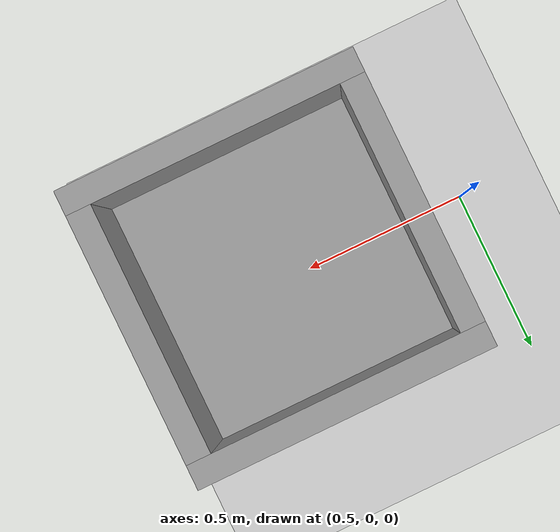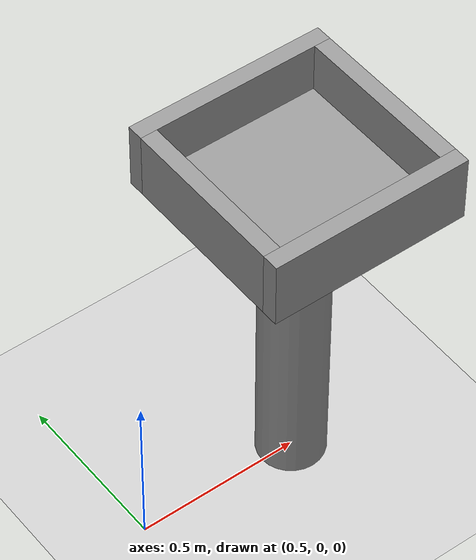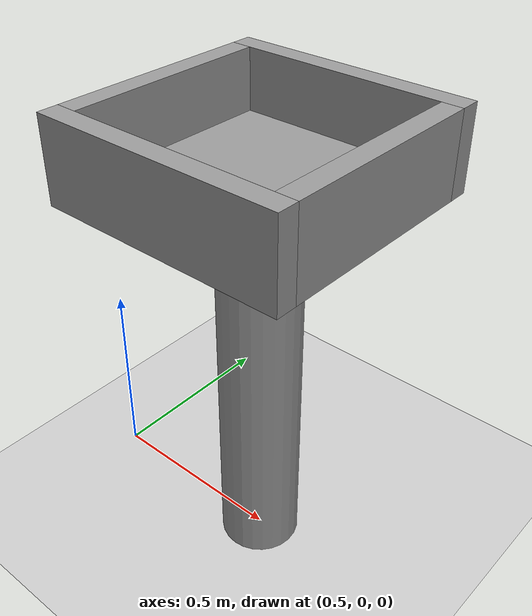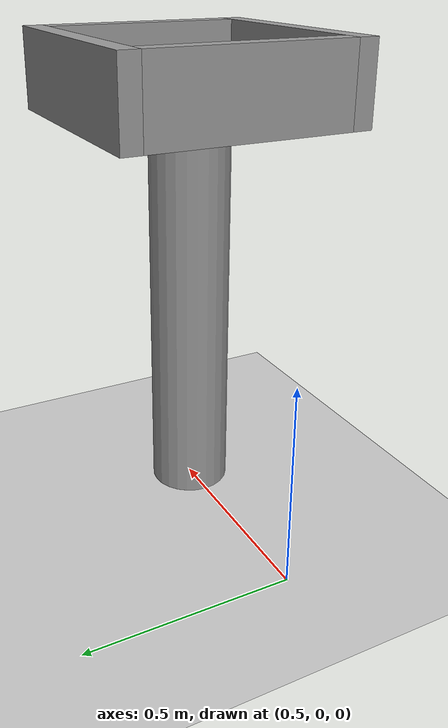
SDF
<sdf version="1.4">
 <world name="qual_task_2">
  <physics type="ode">
   <gravity>0 0 -9.81</gravity>
   <ode>
    <solver>
     <use_dynamic_moi_rescaling>true</use_dynamic_moi_rescaling>
     <type>quick</type>
     <iters>50</iters>
     <sor>1.4</sor>
    </solver>
    <constraints>
     <cfm>0.0</cfm>
     <erp>0.2</erp>
     <contact_max_correcting_vel>100.0</contact_max_correcting_vel>
     <contact_surface_layer>0.0</contact_surface_layer>
    </constraints>
   </ode>
   <real_time_update_rate>1000</real_time_update_rate>
   <max_step_size>0.001</max_step_size>
  </physics>
  <scene><ambient>0.3 0.3 0.3 1.0</ambient></scene>
  <light type="directional" name="sun">
   <pose>0 0 100 0 0 0</pose>
   <diffuse>0.9 0.9 0.9 1</diffuse>
   <specular>0.1 0.1 0.1 1</specular>
   <attenuation>
    <range>1000</range>
    <constant>0.9</constant>
    <linear>0.01</linear>
    <quadratic>0.001</quadratic>
   </attenuation>
   <direction>-0.2 0.0 -1.0</direction>
  </light>
  <light type="point" name="light_bulb">
   <cast_shadows>false</cast_shadows>
   <pose>-3 0 4 0 0 0</pose>
   <diffuse>0.5 0.5 0.5 1</diffuse>
   <specular>0.0 0.0 0.0 1</specular>
   <attenuation>
    <range>80</range>
    <constant>0.9</constant>
    <linear>0.01</linear>
    <quadratic>0.001</quadratic>
   </attenuation>
  </light>
  <include><uri>model://ground_plane</uri></include>
  <model name="bin">
   <static>true</static>
   <pose>1.0 0.0 1.00 0 0 0</pose>
   <link name="link">
    <collision name="pedistal_collision">
     <pose>0 0 -0.5 0 0 0</pose>
     <geometry><cylinder><radius>0.1</radius><length>1.0</length></cylinder></geometry>
    </collision>
    <visual name="pedistal_visual">
     <pose>0 0 -0.5 0 0 0</pose>
     <geometry><cylinder><radius>0.1</radius><length>1.0</length></cylinder></geometry>
     <material>
      <script><uri>file://media/materials/scripts/gazebo.material</uri><name>Gazebo/Grey</name></script>
     </material>
    </visual>
    <collision name="bottom_collision"><geometry><box><size>0.5 0.5 0.05</size></box></geometry></collision>
    <visual name="bottom_visual">
     <geometry><box><size>0.5 0.5 0.05</size></box></geometry>
     <material>
      <script><uri>file://media/materials/scripts/gazebo.material</uri><name>Gazebo/Grey</name></script>
     </material>
    </visual>
    <collision name="side1_collision">
     <pose>0 0.275 0.075 0 0 0</pose>
     <geometry><box><size>0.6 0.05 0.2</size></box></geometry>
    </collision>
    <visual name="side1_visual">
     <pose>0 0.275 0.075 0 0 0</pose>
     <geometry><box><size>0.6 0.05 0.2</size></box></geometry>
     <material>
      <script><uri>file://media/materials/scripts/gazebo.material</uri><name>Gazebo/Grey</name></script>
     </material>
    </visual>
    <collision name="side2_collision">
     <pose>0 -0.275 0.075 0 0 0</pose>
     <geometry><box><size>0.6 0.05 0.2</size></box></geometry>
    </collision>
    <visual name="side2_visual">
     <pose>0 -0.275 0.075 0 0 0</pose>
     <geometry><box><size>0.6 0.05 0.2</size></box></geometry>
     <material>
      <script><uri>file://media/materials/scripts/gazebo.material</uri><name>Gazebo/Grey</name></script>
     </material>
    </visual>
    <collision name="side3_collision">
     <pose>0.275 0 0.075 0 0 0</pose>
     <geometry><box><size>0.05 0.5 0.2</size></box></geometry>
    </collision>
    <visual name="side3_visual">
     <pose>0.275 0 0.075 0 0 0</pose>
     <geometry><box><size>0.05 0.5 0.2</size></box></geometry>
     <material>
      <script><uri>file://media/materials/scripts/gazebo.material</uri><name>Gazebo/Grey</name></script>
     </material>
    </visual>
    <collision name="side4_collision">
     <pose>-0.275 0 0.075 0 0 0</pose>
     <geometry><box><size>0.05 0.5 0.2</size></box></geometry>
    </collision>
    <visual name="side4_visual">
     <pose>-0.275 0 0.075 0 0 0</pose>
     <geometry><box><size>0.05 0.5 0.2</size></box></geometry>
     <material>
      <script><uri>file://media/materials/scripts/gazebo.material</uri><name>Gazebo/Grey</name></script>
     </material>
    </visual>
   </link>
  </model>
  <plugin filename="libVRCPlugin.so" name="vrc_plugin">
   <atlas><model_name>atlas</model_name><pin_link>pelvis</pin_link></atlas>
   <drc_vehicle><model_name>golf_cart</model_name><seat_link>chassis</seat_link></drc_vehicle>
   <drc_fire_hose>
    <fire_hose_model>fire_hose</fire_hose_model>
    <coupling_link>coupling</coupling_link>
    <standpipe_model>standpipe</standpipe_model>
    <spout_link>standpipe</spout_link>
    <thread_pitch>-1000</thread_pitch>
    <coupling_relative_pose>1.17038e-05 -0.125623 0.35 -0.0412152 -1.57078 1.61199</coupling_relative_pose>
   </drc_fire_hose>
  </plugin>
  <plugin filename="libVRCScoringPlugin.so" name="vrc_scoring">
   <score_file>/tmp/qual_task_2/score.log</score_file>
  </plugin>
 </world>
</sdf>
